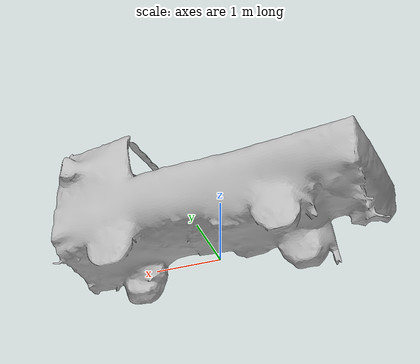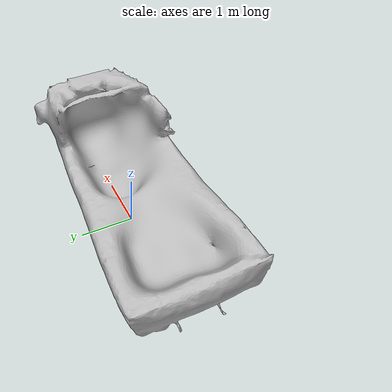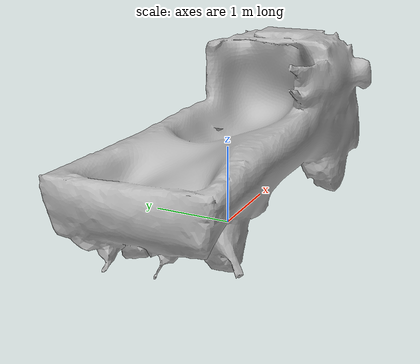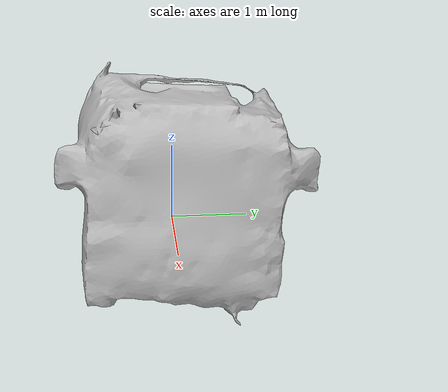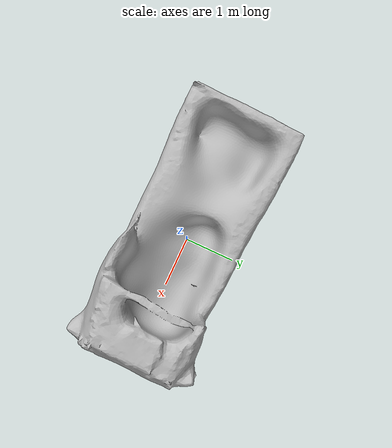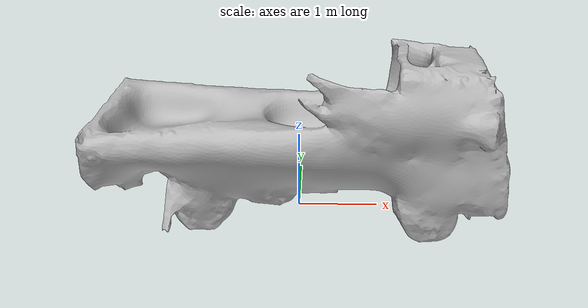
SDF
<?xml version='1.0'?>
<sdf version='1.7'>
  <model name='kare-lorry3'>
    <model name='kare-lorry2'>
      <model name='kare-emptylorry'>
        <static>1</static>
        <link name='link'>
          <collision name='collision'>
            <geometry>
              <mesh>
                <scale>5 5 5</scale>
                <uri>/home/amadeus/model_editor_models/kare-emptylorry/meshes/kare-emptylorry.obj</uri>
              </mesh>
            </geometry>
            <max_contacts>10</max_contacts>
            <surface>
              <contact>
                <ode/>
              </contact>
              <bounce/>
              <friction>
                <torsional>
                  <ode/>
                </torsional>
                <ode/>
              </friction>
            </surface>
          </collision>
          <visual name='visual'>
            <geometry>
              <mesh>
                <scale>5 5 5</scale>
                <uri>/home/amadeus/model_editor_models/kare-emptylorry/meshes/kare-emptylorry.obj</uri>
              </mesh>
            </geometry>
          </visual>
          <self_collide>0</self_collide>
          <enable_wind>0</enable_wind>
          <kinematic>0</kinematic>
        </link>
        <pose>-2.6e-05 -2.7e-05 -2e-06 1.55178 -0.050932 -1.58567</pose>
      </model>
      <static>0</static>
      <allow_auto_disable>1</allow_auto_disable>
      <pose>2e-06 0 0.971266 0 -0 0</pose>
    </model>
    <static>1</static>
    <allow_auto_disable>0</allow_auto_disable>
    <plugin name='model_move' filename='/home/amadeus/Downloads/dev_ws/src/articubot_one/worlds/build/libmodel_move.so'/>
  </model>
</sdf>
